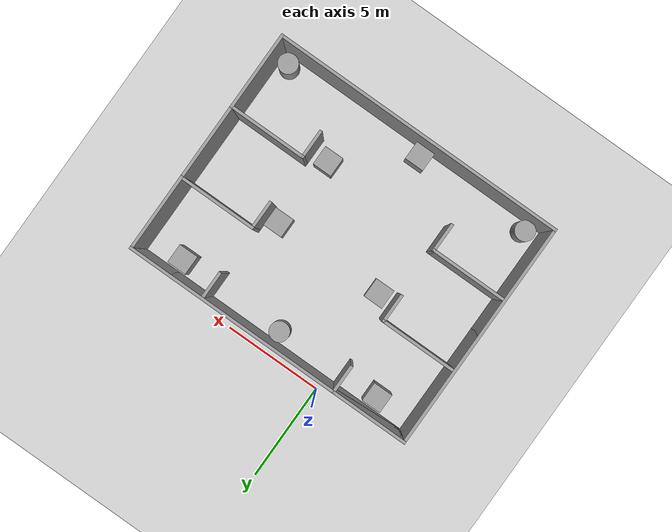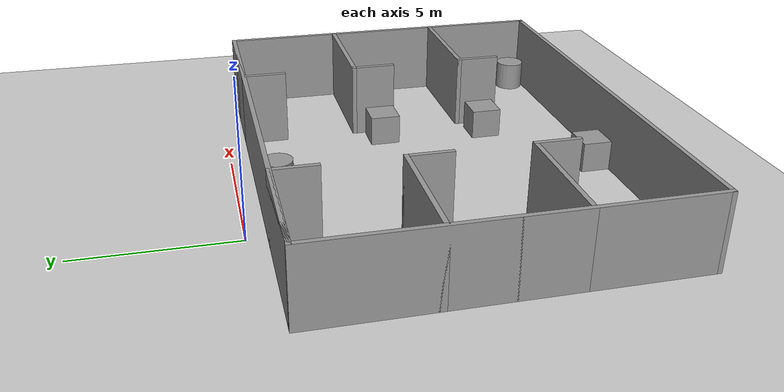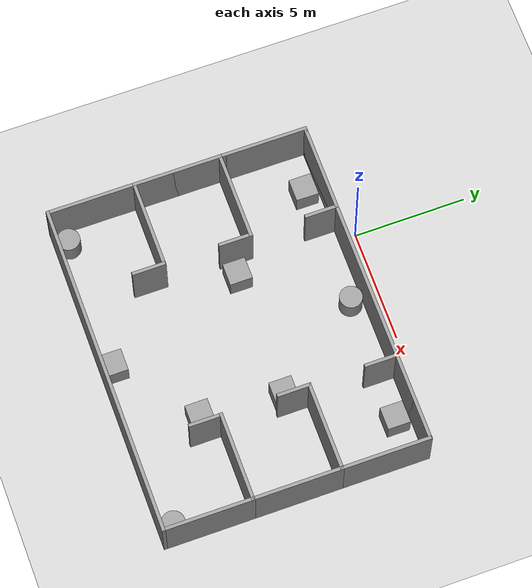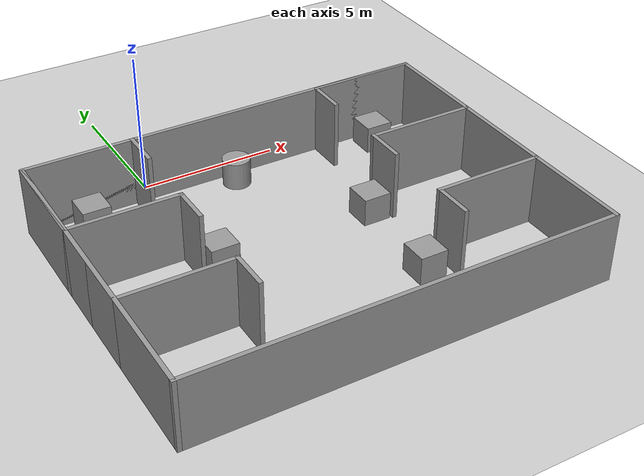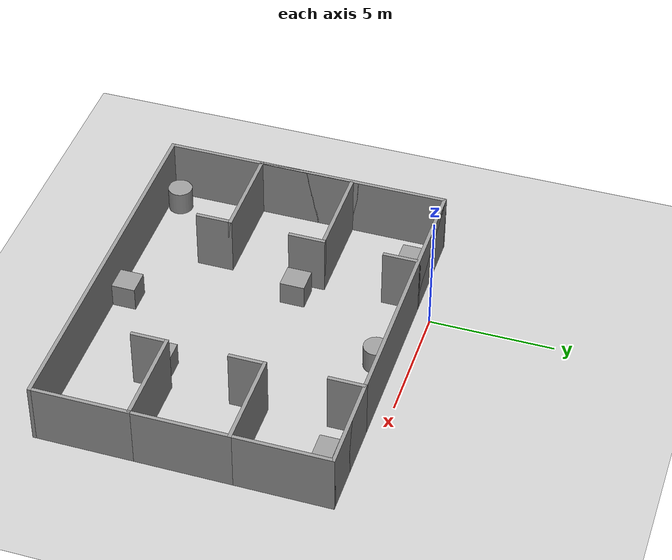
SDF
<sdf version="1.7">
 <world name="default">
  <light name="sun" type="directional">
   <pose>0 0 10 0 -0 0</pose>
   <diffuse>0.8 0.8 0.8 1</diffuse>
   <specular>0.2 0.2 0.2 1</specular>
   <attenuation>
    <range>1000</range>
    <constant>0.9</constant>
    <linear>0.01</linear>
    <quadratic>0.001</quadratic>
   </attenuation>
   <direction>-0.5 0.1 -0.9</direction>
   <spot><inner_angle>0</inner_angle><outer_angle>0</outer_angle><falloff>0</falloff></spot>
  </light>
  <model name="ground_plane">
   <static>1</static>
   <link name="link">
    <collision name="collision">
     <geometry><plane><normal>0 0 1</normal><size>100 100</size></plane></geometry>
     <surface><friction><ode><mu>100</mu><mu2>50</mu2></ode></friction></surface>
    </collision>
    <visual name="visual">
     <cast_shadows>0</cast_shadows>
     <geometry><plane><normal>0 0 1</normal><size>100 100</size></plane></geometry>
     <material>
      <script><uri>file://media/materials/scripts/gazebo.material</uri><name>Gazebo/Grey</name></script>
     </material>
    </visual>
   </link>
  </model>
  <gravity>0 0 -9.8</gravity>
  <magnetic_field>6e-06 2.3e-05 -4.2e-05</magnetic_field>
  <atmosphere type="adiabatic"/>
  <physics type="ode">
   <max_step_size>0.001</max_step_size>
   <real_time_factor>1</real_time_factor>
   <real_time_update_rate>1000</real_time_update_rate>
  </physics>
  <scene><ambient>0.4 0.4 0.4 1</ambient><background>0.7 0.7 0.7 1</background><shadows>1</shadows></scene>
  <spherical_coordinates>
   <surface_model>EARTH_WGS84</surface_model>
   <latitude_deg>0</latitude_deg>
   <longitude_deg>0</longitude_deg>
   <elevation>0</elevation>
   <heading_deg>0</heading_deg>
  </spherical_coordinates>
  <model name="room1">
   <pose>3.005 -6.1625 0 0 -0 0</pose>
   <link name="Wall_0">
    <collision name="Wall_0_Collision">
     <geometry><box><size>15 0.15 2.5</size></box></geometry>
     <pose>0 0 1.25 0 -0 0</pose>
    </collision>
    <visual name="Wall_0_Visual">
     <pose>0 0 1.25 0 -0 0</pose>
     <geometry><box><size>15 0.15 2.5</size></box></geometry>
     <material>
      <script><uri>file://media/materials/scripts/gazebo.material</uri><name>Gazebo/Grey</name></script>
      <ambient>1 1 1 1</ambient>
     </material>
     <meta><layer>0</layer></meta>
    </visual>
    <pose>0 5.4625 0 0 -0 0</pose>
   </link>
   <link name="Wall_1">
    <collision name="Wall_1_Collision">
     <geometry><box><size>4 0.15 2.5</size></box></geometry>
     <pose>0 0 1.25 0 -0 0</pose>
    </collision>
    <visual name="Wall_1_Visual">
     <pose>0 0 1.25 0 -0 0</pose>
     <geometry><box><size>4 0.15 2.5</size></box></geometry>
     <material>
      <script><uri>file://media/materials/scripts/gazebo.material</uri><name>Gazebo/Grey</name></script>
      <ambient>1 1 1 1</ambient>
     </material>
     <meta><layer>0</layer></meta>
    </visual>
    <pose>7.425 3.5375 0 0 -0 -1.5708</pose>
   </link>
   <link name="Wall_2">
    <collision name="Wall_2_Collision">
     <geometry><box><size>4 0.15 2.5</size></box></geometry>
     <pose>0 0 1.25 0 -0 0</pose>
    </collision>
    <visual name="Wall_2_Visual">
     <pose>0 0 1.25 0 -0 0</pose>
     <geometry><box><size>4 0.15 2.5</size></box></geometry>
     <material>
      <script><uri>file://media/materials/scripts/gazebo.material</uri><name>Gazebo/Grey</name></script>
      <ambient>1 1 1 1</ambient>
     </material>
     <meta><layer>0</layer></meta>
    </visual>
    <pose>5.5 1.6125 0 0 -0 3.14159</pose>
   </link>
   <link name="Wall_24">
    <collision name="Wall_24_Collision">
     <geometry><box><size>4 0.15 2.5</size></box></geometry>
     <pose>0 0 1.25 0 -0 0</pose>
    </collision>
    <visual name="Wall_24_Visual">
     <pose>0 0 1.25 0 -0 0</pose>
     <geometry><box><size>4 0.15 2.5</size></box></geometry>
     <material>
      <script><uri>file://media/materials/scripts/gazebo.material</uri><name>Gazebo/Grey</name></script>
      <ambient>1 1 1 1</ambient>
     </material>
     <meta><layer>0</layer></meta>
    </visual>
    <pose>7.425 -4.1625 0 0 -0 -1.5708</pose>
   </link>
   <link name="Wall_25">
    <collision name="Wall_25_Collision">
     <geometry><box><size>15 0.15 2.5</size></box></geometry>
     <pose>0 0 1.25 0 -0 0</pose>
    </collision>
    <visual name="Wall_25_Visual">
     <pose>0 0 1.25 0 -0 0</pose>
     <geometry><box><size>15 0.15 2.5</size></box></geometry>
     <material>
      <script><uri>file://media/materials/scripts/gazebo.material</uri><name>Gazebo/Grey</name></script>
      <ambient>1 1 1 1</ambient>
     </material>
     <meta><layer>0</layer></meta>
    </visual>
    <pose>0 -6.0875 0 0 -0 3.14159</pose>
   </link>
   <link name="Wall_26">
    <collision name="Wall_26_Collision">
     <geometry><box><size>11.7 0.15 2.5</size></box></geometry>
     <pose>0 0 1.25 0 -0 0</pose>
    </collision>
    <visual name="Wall_26_Visual">
     <pose>0 0 1.25 0 -0 0</pose>
     <geometry><box><size>11.7 0.15 2.5</size></box></geometry>
     <material>
      <script><uri>file://media/materials/scripts/gazebo.material</uri><name>Gazebo/Grey</name></script>
      <ambient>1 1 1 1</ambient>
     </material>
     <meta><layer>0</layer></meta>
    </visual>
    <pose>-7.425 -0.3125 0 0 -0 1.5708</pose>
   </link>
   <link name="Wall_28">
    <collision name="Wall_28_Collision">
     <geometry><box><size>4 0.15 2.5</size></box></geometry>
     <pose>0 0 1.25 0 -0 0</pose>
    </collision>
    <visual name="Wall_28_Visual">
     <pose>0 0 1.25 0 -0 0</pose>
     <geometry><box><size>4 0.15 2.5</size></box></geometry>
     <material>
      <script><uri>file://media/materials/scripts/gazebo.material</uri><name>Gazebo/Grey</name></script>
      <ambient>1 1 1 1</ambient>
     </material>
     <meta><layer>0</layer></meta>
    </visual>
    <pose>5.5 5.4625 0 0 -0 3.14159</pose>
   </link>
   <link name="Wall_29">
    <collision name="Wall_29_Collision">
     <geometry><box><size>1.5 0.15 2.5</size></box></geometry>
     <pose>0 0 1.25 0 -0 0</pose>
    </collision>
    <visual name="Wall_29_Visual">
     <pose>0 0 1.25 0 -0 0</pose>
     <geometry><box><size>1.5 0.15 2.5</size></box></geometry>
     <material>
      <script><uri>file://media/materials/scripts/gazebo.material</uri><name>Gazebo/Grey</name></script>
      <ambient>1 1 1 1</ambient>
     </material>
     <meta><layer>0</layer></meta>
    </visual>
    <pose>3.575 4.7875 0 0 -0 -1.5708</pose>
   </link>
   <link name="Wall_3">
    <collision name="Wall_3_Collision">
     <geometry><box><size>1.5 0.15 2.5</size></box></geometry>
     <pose>0 0 1.25 0 -0 0</pose>
    </collision>
    <visual name="Wall_3_Visual">
     <pose>0 0 1.25 0 -0 0</pose>
     <geometry><box><size>1.5 0.15 2.5</size></box></geometry>
     <material>
      <script><uri>file://media/materials/scripts/gazebo.material</uri><name>Gazebo/Grey</name></script>
      <ambient>1 1 1 1</ambient>
     </material>
     <meta><layer>0</layer></meta>
    </visual>
    <pose>3.575 0.9375 0 0 -0 -1.5708</pose>
   </link>
   <link name="Wall_31">
    <collision name="Wall_31_Collision">
     <geometry><box><size>4 0.15 2.5</size></box></geometry>
     <pose>0 0 1.25 0 -0 0</pose>
    </collision>
    <visual name="Wall_31_Visual">
     <pose>0 0 1.25 0 -0 0</pose>
     <geometry><box><size>4 0.15 2.5</size></box></geometry>
     <material>
      <script><uri>file://media/materials/scripts/gazebo.material</uri><name>Gazebo/Grey</name></script>
      <ambient>1 1 1 1</ambient>
     </material>
     <meta><layer>0</layer></meta>
    </visual>
    <pose>-5.5 5.4625 0 0 -0 0</pose>
   </link>
   <link name="Wall_32">
    <collision name="Wall_32_Collision">
     <geometry><box><size>1.5 0.15 2.5</size></box></geometry>
     <pose>0 0 1.25 0 -0 0</pose>
    </collision>
    <visual name="Wall_32_Visual">
     <pose>0 0 1.25 0 -0 0</pose>
     <geometry><box><size>1.5 0.15 2.5</size></box></geometry>
     <material>
      <script><uri>file://media/materials/scripts/gazebo.material</uri><name>Gazebo/Grey</name></script>
      <ambient>1 1 1 1</ambient>
     </material>
     <meta><layer>0</layer></meta>
    </visual>
    <pose>-3.575 4.7875 0 0 -0 -1.5708</pose>
   </link>
   <link name="Wall_34">
    <collision name="Wall_34_Collision">
     <geometry><box><size>4 0.15 2.5</size></box></geometry>
     <pose>0 0 1.25 0 -0 0</pose>
    </collision>
    <visual name="Wall_34_Visual">
     <pose>0 0 1.25 0 -0 0</pose>
     <geometry><box><size>4 0.15 2.5</size></box></geometry>
     <material>
      <script><uri>file://media/materials/scripts/gazebo.material</uri><name>Gazebo/Grey</name></script>
      <ambient>1 1 1 1</ambient>
     </material>
     <meta><layer>0</layer></meta>
    </visual>
    <pose>-7.425 3.5375 0 0 -0 -1.5708</pose>
   </link>
   <link name="Wall_35">
    <collision name="Wall_35_Collision">
     <geometry><box><size>4 0.15 2.5</size></box></geometry>
     <pose>0 0 1.25 0 -0 0</pose>
    </collision>
    <visual name="Wall_35_Visual">
     <pose>0 0 1.25 0 -0 0</pose>
     <geometry><box><size>4 0.15 2.5</size></box></geometry>
     <material>
      <script><uri>file://media/materials/scripts/gazebo.material</uri><name>Gazebo/Grey</name></script>
      <ambient>1 1 1 1</ambient>
     </material>
     <meta><layer>0</layer></meta>
    </visual>
    <pose>-5.5 1.6125 0 0 -0 0</pose>
   </link>
   <link name="Wall_36">
    <collision name="Wall_36_Collision">
     <geometry><box><size>1.5 0.15 2.5</size></box></geometry>
     <pose>0 0 1.25 0 -0 0</pose>
    </collision>
    <visual name="Wall_36_Visual">
     <pose>0 0 1.25 0 -0 0</pose>
     <geometry><box><size>1.5 0.15 2.5</size></box></geometry>
     <material>
      <script><uri>file://media/materials/scripts/gazebo.material</uri><name>Gazebo/Grey</name></script>
      <ambient>1 1 1 1</ambient>
     </material>
     <meta><layer>0</layer></meta>
    </visual>
    <pose>-3.575 0.9375 0 0 -0 -1.5708</pose>
   </link>
   <link name="Wall_38">
    <collision name="Wall_38_Collision">
     <geometry><box><size>4 0.15 2.5</size></box></geometry>
     <pose>0 0 1.25 0 -0 0</pose>
    </collision>
    <visual name="Wall_38_Visual">
     <pose>0 0 1.25 0 -0 0</pose>
     <geometry><box><size>4 0.15 2.5</size></box></geometry>
     <material>
      <script><uri>file://media/materials/scripts/gazebo.material</uri><name>Gazebo/Grey</name></script>
      <ambient>1 1 1 1</ambient>
     </material>
     <meta><layer>0</layer></meta>
    </visual>
    <pose>-7.425 -0.3125 0 0 -0 -1.5708</pose>
   </link>
   <link name="Wall_39">
    <collision name="Wall_39_Collision">
     <geometry><box><size>4 0.15 2.5</size></box></geometry>
     <pose>0 0 1.25 0 -0 0</pose>
    </collision>
    <visual name="Wall_39_Visual">
     <pose>0 0 1.25 0 -0 0</pose>
     <geometry><box><size>4 0.15 2.5</size></box></geometry>
     <material>
      <script><uri>file://media/materials/scripts/gazebo.material</uri><name>Gazebo/Grey</name></script>
      <ambient>1 1 1 1</ambient>
     </material>
     <meta><layer>0</layer></meta>
    </visual>
    <pose>-5.5 -2.2375 0 0 -0 0</pose>
   </link>
   <link name="Wall_40">
    <collision name="Wall_40_Collision">
     <geometry><box><size>1.5 0.15 2.5</size></box></geometry>
     <pose>0 0 1.25 0 -0 0</pose>
    </collision>
    <visual name="Wall_40_Visual">
     <pose>0 0 1.25 0 -0 0</pose>
     <geometry><box><size>1.5 0.15 2.5</size></box></geometry>
     <material>
      <script><uri>file://media/materials/scripts/gazebo.material</uri><name>Gazebo/Grey</name></script>
      <ambient>1 1 1 1</ambient>
     </material>
     <meta><layer>0</layer></meta>
    </visual>
    <pose>-3.575 -2.9125 0 0 -0 -1.5708</pose>
   </link>
   <link name="Wall_5">
    <collision name="Wall_5_Collision">
     <geometry><box><size>4 0.15 2.5</size></box></geometry>
     <pose>0 0 1.25 0 -0 0</pose>
    </collision>
    <visual name="Wall_5_Visual">
     <pose>0 0 1.25 0 -0 0</pose>
     <geometry><box><size>4 0.15 2.5</size></box></geometry>
     <material>
      <script><uri>file://media/materials/scripts/gazebo.material</uri><name>Gazebo/Grey</name></script>
      <ambient>1 1 1 1</ambient>
     </material>
     <meta><layer>0</layer></meta>
    </visual>
    <pose>7.425 -0.3125 0 0 -0 -1.5708</pose>
   </link>
   <link name="Wall_6">
    <collision name="Wall_6_Collision">
     <geometry><box><size>4 0.15 2.5</size></box></geometry>
     <pose>0 0 1.25 0 -0 0</pose>
    </collision>
    <visual name="Wall_6_Visual">
     <pose>0 0 1.25 0 -0 0</pose>
     <geometry><box><size>4 0.15 2.5</size></box></geometry>
     <material>
      <script><uri>file://media/materials/scripts/gazebo.material</uri><name>Gazebo/Grey</name></script>
      <ambient>1 1 1 1</ambient>
     </material>
     <meta><layer>0</layer></meta>
    </visual>
    <pose>5.5 -2.2375 0 0 -0 3.14159</pose>
   </link>
   <link name="Wall_7">
    <collision name="Wall_7_Collision">
     <geometry><box><size>1.5 0.15 2.5</size></box></geometry>
     <pose>0 0 1.25 0 -0 0</pose>
    </collision>
    <visual name="Wall_7_Visual">
     <pose>0 0 1.25 0 -0 0</pose>
     <geometry><box><size>1.5 0.15 2.5</size></box></geometry>
     <material>
      <script><uri>file://media/materials/scripts/gazebo.material</uri><name>Gazebo/Grey</name></script>
      <ambient>1 1 1 1</ambient>
     </material>
     <meta><layer>0</layer></meta>
    </visual>
    <pose>3.575 -2.9125 0 0 -0 -1.5708</pose>
   </link>
   <static>1</static>
  </model>
  <model name="room2">
   <link name="link_0">
    <inertial>
     <mass>1</mass>
     <inertia>
      <ixx>0.166667</ixx>
      <ixy>0</ixy>
      <ixz>0</ixz>
      <iyy>0.166667</iyy>
      <iyz>0</iyz>
      <izz>0.166667</izz>
     </inertia>
    </inertial>
    <pose>5.27529 5.12658 0 0 -0 0</pose>
    <visual name="visual">
     <geometry><box><size>1 1 1</size></box></geometry>
     <material>
      <lighting>1</lighting>
      <script><uri>file://media/materials/scripts/gazebo.material</uri><name>Gazebo/Grey</name></script>
      <shader type="pixel"/>
     </material>
    </visual>
    <collision name="collision">
     <geometry><box><size>1 1 1</size></box></geometry>
     <surface>
      <friction>
       <ode><mu>1</mu><mu2>1</mu2><fdir1>0 0 0</fdir1><slip1>0</slip1><slip2>0</slip2></ode>
       <torsional>
        <coefficient>1</coefficient>
        <patch_radius>0</patch_radius>
        <surface_radius>0</surface_radius>
        <use_patch_radius>1</use_patch_radius>
        <ode><slip>0</slip></ode>
       </torsional>
      </friction>
      <bounce><restitution_coefficient>0</restitution_coefficient><threshold>1e+06</threshold></bounce>
      <contact>
       <collide_without_contact>0</collide_without_contact>
       <collide_without_contact_bitmask>1</collide_without_contact_bitmask>
       <collide_bitmask>1</collide_bitmask>
       <ode>
        <soft_cfm>0</soft_cfm>
        <soft_erp>0.2</soft_erp>
        <kp>1e+13</kp>
        <kd>1</kd>
        <max_vel>0.01</max_vel>
        <min_depth>0</min_depth>
       </ode>
       <bullet>
        <split_impulse>1</split_impulse>
        <split_impulse_penetration_threshold>-0.01</split_impulse_penetration_threshold>
        <soft_cfm>0</soft_cfm>
        <soft_erp>0.2</soft_erp>
        <kp>1e+13</kp>
        <kd>1</kd>
       </bullet>
      </contact>
     </surface>
    </collision>
   </link>
   <link name="link_1">
    <inertial>
     <mass>1</mass>
     <inertia>
      <ixx>0.166667</ixx>
      <ixy>0</ixy>
      <ixz>0</ixz>
      <iyy>0.166667</iyy>
      <iyz>0</iyz>
      <izz>0.166667</izz>
     </inertia>
    </inertial>
    <pose>-5.76065 5.1276 0 0 -0 0</pose>
    <visual name="visual">
     <geometry><box><size>1 1 1</size></box></geometry>
     <material>
      <lighting>1</lighting>
      <script><uri>file://media/materials/scripts/gazebo.material</uri><name>Gazebo/Grey</name></script>
      <shader type="pixel"/>
     </material>
    </visual>
    <collision name="collision">
     <geometry><box><size>1 1 1</size></box></geometry>
     <surface>
      <friction>
       <ode><mu>1</mu><mu2>1</mu2><fdir1>0 0 0</fdir1><slip1>0</slip1><slip2>0</slip2></ode>
       <torsional>
        <coefficient>1</coefficient>
        <patch_radius>0</patch_radius>
        <surface_radius>0</surface_radius>
        <use_patch_radius>1</use_patch_radius>
        <ode><slip>0</slip></ode>
       </torsional>
      </friction>
      <bounce><restitution_coefficient>0</restitution_coefficient><threshold>1e+06</threshold></bounce>
      <contact>
       <collide_without_contact>0</collide_without_contact>
       <collide_without_contact_bitmask>1</collide_without_contact_bitmask>
       <collide_bitmask>1</collide_bitmask>
       <ode>
        <soft_cfm>0</soft_cfm>
        <soft_erp>0.2</soft_erp>
        <kp>1e+13</kp>
        <kd>1</kd>
        <max_vel>0.01</max_vel>
        <min_depth>0</min_depth>
       </ode>
       <bullet>
        <split_impulse>1</split_impulse>
        <split_impulse_penetration_threshold>-0.01</split_impulse_penetration_threshold>
        <soft_cfm>0</soft_cfm>
        <soft_erp>0.2</soft_erp>
        <kp>1e+13</kp>
        <kd>1</kd>
       </bullet>
      </contact>
     </surface>
    </collision>
   </link>
   <link name="link_10">
    <inertial>
     <mass>1</mass>
     <inertia>
      <ixx>0.166667</ixx>
      <ixy>0</ixy>
      <ixz>0</ixz>
      <iyy>0.166667</iyy>
      <iyz>0</iyz>
      <izz>0.166667</izz>
     </inertia>
    </inertial>
    <pose>2.65087 1.15737 0 0 -0 0</pose>
    <visual name="visual">
     <geometry><box><size>1 1 1</size></box></geometry>
     <material>
      <lighting>1</lighting>
      <script><uri>file://media/materials/scripts/gazebo.material</uri><name>Gazebo/Grey</name></script>
      <shader type="pixel"/>
     </material>
    </visual>
    <collision name="collision">
     <geometry><box><size>1 1 1</size></box></geometry>
     <surface>
      <friction>
       <ode><mu>1</mu><mu2>1</mu2><fdir1>0 0 0</fdir1><slip1>0</slip1><slip2>0</slip2></ode>
       <torsional>
        <coefficient>1</coefficient>
        <patch_radius>0</patch_radius>
        <surface_radius>0</surface_radius>
        <use_patch_radius>1</use_patch_radius>
        <ode><slip>0</slip></ode>
       </torsional>
      </friction>
      <bounce><restitution_coefficient>0</restitution_coefficient><threshold>1e+06</threshold></bounce>
      <contact>
       <collide_without_contact>0</collide_without_contact>
       <collide_without_contact_bitmask>1</collide_without_contact_bitmask>
       <collide_bitmask>1</collide_bitmask>
       <ode>
        <soft_cfm>0</soft_cfm>
        <soft_erp>0.2</soft_erp>
        <kp>1e+13</kp>
        <kd>1</kd>
        <max_vel>0.01</max_vel>
        <min_depth>0</min_depth>
       </ode>
       <bullet>
        <split_impulse>1</split_impulse>
        <split_impulse_penetration_threshold>-0.01</split_impulse_penetration_threshold>
        <soft_cfm>0</soft_cfm>
        <soft_erp>0.2</soft_erp>
        <kp>1e+13</kp>
        <kd>1</kd>
       </bullet>
      </contact>
     </surface>
    </collision>
   </link>
   <link name="link_2">
    <inertial>
     <mass>1</mass>
     <inertia>
      <ixx>0.166667</ixx>
      <ixy>0</ixy>
      <ixz>0</ixz>
      <iyy>0.166667</iyy>
      <iyz>0</iyz>
      <izz>0.166667</izz>
     </inertia>
    </inertial>
    <pose>-3.0477 1.14509 0 0 -0 0</pose>
    <visual name="visual">
     <geometry><box><size>1 1 1</size></box></geometry>
     <material>
      <lighting>1</lighting>
      <script><uri>file://media/materials/scripts/gazebo.material</uri><name>Gazebo/Grey</name></script>
      <shader type="pixel"/>
     </material>
    </visual>
    <collision name="collision">
     <geometry><box><size>1 1 1</size></box></geometry>
     <surface>
      <friction>
       <ode><mu>1</mu><mu2>1</mu2><fdir1>0 0 0</fdir1><slip1>0</slip1><slip2>0</slip2></ode>
       <torsional>
        <coefficient>1</coefficient>
        <patch_radius>0</patch_radius>
        <surface_radius>0</surface_radius>
        <use_patch_radius>1</use_patch_radius>
        <ode><slip>0</slip></ode>
       </torsional>
      </friction>
      <bounce><restitution_coefficient>0</restitution_coefficient><threshold>1e+06</threshold></bounce>
      <contact>
       <collide_without_contact>0</collide_without_contact>
       <collide_without_contact_bitmask>1</collide_without_contact_bitmask>
       <collide_bitmask>1</collide_bitmask>
       <ode>
        <soft_cfm>0</soft_cfm>
        <soft_erp>0.2</soft_erp>
        <kp>1e+13</kp>
        <kd>1</kd>
        <max_vel>0.01</max_vel>
        <min_depth>0</min_depth>
       </ode>
       <bullet>
        <split_impulse>1</split_impulse>
        <split_impulse_penetration_threshold>-0.01</split_impulse_penetration_threshold>
        <soft_cfm>0</soft_cfm>
        <soft_erp>0.2</soft_erp>
        <kp>1e+13</kp>
        <kd>1</kd>
       </bullet>
      </contact>
     </surface>
    </collision>
   </link>
   <link name="link_3">
    <inertial>
     <mass>1</mass>
     <inertia>
      <ixx>0.166667</ixx>
      <ixy>0</ixy>
      <ixz>0</ixz>
      <iyy>0.166667</iyy>
      <iyz>0</iyz>
      <izz>0.166667</izz>
     </inertia>
    </inertial>
    <pose>2.42176 -2.47036 0 0 -0 0</pose>
    <visual name="visual">
     <geometry><box><size>1 1 1</size></box></geometry>
     <material>
      <lighting>1</lighting>
      <script><uri>file://media/materials/scripts/gazebo.material</uri><name>Gazebo/Grey</name></script>
      <shader type="pixel"/>
     </material>
    </visual>
    <collision name="collision">
     <geometry><box><size>1 1 1</size></box></geometry>
     <surface>
      <friction>
       <ode><mu>1</mu><mu2>1</mu2><fdir1>0 0 0</fdir1><slip1>0</slip1><slip2>0</slip2></ode>
       <torsional>
        <coefficient>1</coefficient>
        <patch_radius>0</patch_radius>
        <surface_radius>0</surface_radius>
        <use_patch_radius>1</use_patch_radius>
        <ode><slip>0</slip></ode>
       </torsional>
      </friction>
      <bounce><restitution_coefficient>0</restitution_coefficient><threshold>1e+06</threshold></bounce>
      <contact>
       <collide_without_contact>0</collide_without_contact>
       <collide_without_contact_bitmask>1</collide_without_contact_bitmask>
       <collide_bitmask>1</collide_bitmask>
       <ode>
        <soft_cfm>0</soft_cfm>
        <soft_erp>0.2</soft_erp>
        <kp>1e+13</kp>
        <kd>1</kd>
        <max_vel>0.01</max_vel>
        <min_depth>0</min_depth>
       </ode>
       <bullet>
        <split_impulse>1</split_impulse>
        <split_impulse_penetration_threshold>-0.01</split_impulse_penetration_threshold>
        <soft_cfm>0</soft_cfm>
        <soft_erp>0.2</soft_erp>
        <kp>1e+13</kp>
        <kd>1</kd>
       </bullet>
      </contact>
     </surface>
    </collision>
   </link>
   <link name="link_4">
    <inertial>
     <mass>1</mass>
     <inertia>
      <ixx>0.166667</ixx>
      <ixy>0</ixy>
      <ixz>0</ixz>
      <iyy>0.166667</iyy>
      <iyz>0</iyz>
      <izz>0.166667</izz>
     </inertia>
    </inertial>
    <pose>-0.903856 -5.13974 0 0 -0 0</pose>
    <visual name="visual">
     <geometry><box><size>1 1 1</size></box></geometry>
     <material>
      <lighting>1</lighting>
      <script><uri>file://media/materials/scripts/gazebo.material</uri><name>Gazebo/Grey</name></script>
      <shader type="pixel"/>
     </material>
    </visual>
    <collision name="collision">
     <geometry><box><size>1 1 1</size></box></geometry>
     <surface>
      <friction>
       <ode><mu>1</mu><mu2>1</mu2><fdir1>0 0 0</fdir1><slip1>0</slip1><slip2>0</slip2></ode>
       <torsional>
        <coefficient>1</coefficient>
        <patch_radius>0</patch_radius>
        <surface_radius>0</surface_radius>
        <use_patch_radius>1</use_patch_radius>
        <ode><slip>0</slip></ode>
       </torsional>
      </friction>
      <bounce><restitution_coefficient>0</restitution_coefficient><threshold>1e+06</threshold></bounce>
      <contact>
       <collide_without_contact>0</collide_without_contact>
       <collide_without_contact_bitmask>1</collide_without_contact_bitmask>
       <collide_bitmask>1</collide_bitmask>
       <ode>
        <soft_cfm>0</soft_cfm>
        <soft_erp>0.2</soft_erp>
        <kp>1e+13</kp>
        <kd>1</kd>
        <max_vel>0.01</max_vel>
        <min_depth>0</min_depth>
       </ode>
       <bullet>
        <split_impulse>1</split_impulse>
        <split_impulse_penetration_threshold>-0.01</split_impulse_penetration_threshold>
        <soft_cfm>0</soft_cfm>
        <soft_erp>0.2</soft_erp>
        <kp>1e+13</kp>
        <kd>1</kd>
       </bullet>
      </contact>
     </surface>
    </collision>
   </link>
   <link name="link_5">
    <inertial>
     <mass>1</mass>
     <inertia><ixx>0.145833</ixx><ixy>0</ixy><ixz>0</ixz><iyy>0.145833</iyy><iyz>0</iyz><izz>0.125</izz></inertia>
    </inertial>
    <pose>-6.86713 -5.12266 0 0 -0 0</pose>
    <visual name="visual">
     <geometry><cylinder><radius>0.5</radius><length>1</length></cylinder></geometry>
     <material>
      <lighting>1</lighting>
      <script><uri>file://media/materials/scripts/gazebo.material</uri><name>Gazebo/Grey</name></script>
      <shader type="pixel"/>
     </material>
    </visual>
    <collision name="collision">
     <geometry><cylinder><radius>0.5</radius><length>1</length></cylinder></geometry>
     <surface>
      <friction>
       <ode><mu>1</mu><mu2>1</mu2><fdir1>0 0 0</fdir1><slip1>0</slip1><slip2>0</slip2></ode>
       <torsional>
        <coefficient>1</coefficient>
        <patch_radius>0</patch_radius>
        <surface_radius>0</surface_radius>
        <use_patch_radius>1</use_patch_radius>
        <ode><slip>0</slip></ode>
       </torsional>
      </friction>
      <bounce><restitution_coefficient>0</restitution_coefficient><threshold>1e+06</threshold></bounce>
      <contact>
       <collide_without_contact>0</collide_without_contact>
       <collide_without_contact_bitmask>1</collide_without_contact_bitmask>
       <collide_bitmask>1</collide_bitmask>
       <ode>
        <soft_cfm>0</soft_cfm>
        <soft_erp>0.2</soft_erp>
        <kp>1e+13</kp>
        <kd>1</kd>
        <max_vel>0.01</max_vel>
        <min_depth>0</min_depth>
       </ode>
       <bullet>
        <split_impulse>1</split_impulse>
        <split_impulse_penetration_threshold>-0.01</split_impulse_penetration_threshold>
        <soft_cfm>0</soft_cfm>
        <soft_erp>0.2</soft_erp>
        <kp>1e+13</kp>
        <kd>1</kd>
       </bullet>
      </contact>
     </surface>
    </collision>
   </link>
   <link name="link_8">
    <inertial>
     <mass>1</mass>
     <inertia><ixx>0.145833</ixx><ixy>0</ixy><ixz>0</ixz><iyy>0.145833</iyy><iyz>0</iyz><izz>0.125</izz></inertia>
    </inertial>
    <pose>6.53918 -5.07746 0 0 -0 0</pose>
    <visual name="visual">
     <geometry><cylinder><radius>0.5</radius><length>1</length></cylinder></geometry>
     <material>
      <lighting>1</lighting>
      <script><uri>file://media/materials/scripts/gazebo.material</uri><name>Gazebo/Grey</name></script>
      <shader type="pixel"/>
     </material>
    </visual>
    <collision name="collision">
     <geometry><cylinder><radius>0.5</radius><length>1</length></cylinder></geometry>
     <surface>
      <friction>
       <ode><mu>1</mu><mu2>1</mu2><fdir1>0 0 0</fdir1><slip1>0</slip1><slip2>0</slip2></ode>
       <torsional>
        <coefficient>1</coefficient>
        <patch_radius>0</patch_radius>
        <surface_radius>0</surface_radius>
        <use_patch_radius>1</use_patch_radius>
        <ode><slip>0</slip></ode>
       </torsional>
      </friction>
      <bounce><restitution_coefficient>0</restitution_coefficient><threshold>1e+06</threshold></bounce>
      <contact>
       <collide_without_contact>0</collide_without_contact>
       <collide_without_contact_bitmask>1</collide_without_contact_bitmask>
       <collide_bitmask>1</collide_bitmask>
       <ode>
        <soft_cfm>0</soft_cfm>
        <soft_erp>0.2</soft_erp>
        <kp>1e+13</kp>
        <kd>1</kd>
        <max_vel>0.01</max_vel>
        <min_depth>0</min_depth>
       </ode>
       <bullet>
        <split_impulse>1</split_impulse>
        <split_impulse_penetration_threshold>-0.01</split_impulse_penetration_threshold>
        <soft_cfm>0</soft_cfm>
        <soft_erp>0.2</soft_erp>
        <kp>1e+13</kp>
        <kd>1</kd>
       </bullet>
      </contact>
     </surface>
    </collision>
   </link>
   <link name="link_9">
    <inertial>
     <mass>1</mass>
     <inertia><ixx>0.145833</ixx><ixy>0</ixy><ixz>0</ixz><iyy>0.145833</iyy><iyz>0</iyz><izz>0.125</izz></inertia>
    </inertial>
    <pose>-0.307767 5.25357 0 0 -0 0</pose>
    <visual name="visual">
     <geometry><cylinder><radius>0.5</radius><length>1</length></cylinder></geometry>
     <material>
      <lighting>1</lighting>
      <script><uri>file://media/materials/scripts/gazebo.material</uri><name>Gazebo/Grey</name></script>
      <shader type="pixel"/>
     </material>
    </visual>
    <collision name="collision">
     <geometry><cylinder><radius>0.5</radius><length>1</length></cylinder></geometry>
     <surface>
      <friction>
       <ode><mu>1</mu><mu2>1</mu2><fdir1>0 0 0</fdir1><slip1>0</slip1><slip2>0</slip2></ode>
       <torsional>
        <coefficient>1</coefficient>
        <patch_radius>0</patch_radius>
        <surface_radius>0</surface_radius>
        <use_patch_radius>1</use_patch_radius>
        <ode><slip>0</slip></ode>
       </torsional>
      </friction>
      <bounce><restitution_coefficient>0</restitution_coefficient><threshold>1e+06</threshold></bounce>
      <contact>
       <collide_without_contact>0</collide_without_contact>
       <collide_without_contact_bitmask>1</collide_without_contact_bitmask>
       <collide_bitmask>1</collide_bitmask>
       <ode>
        <soft_cfm>0</soft_cfm>
        <soft_erp>0.2</soft_erp>
        <kp>1e+13</kp>
        <kd>1</kd>
        <max_vel>0.01</max_vel>
        <min_depth>0</min_depth>
       </ode>
       <bullet>
        <split_impulse>1</split_impulse>
        <split_impulse_penetration_threshold>-0.01</split_impulse_penetration_threshold>
        <soft_cfm>0</soft_cfm>
        <soft_erp>0.2</soft_erp>
        <kp>1e+13</kp>
        <kd>1</kd>
       </bullet>
      </contact>
     </surface>
    </collision>
   </link>
   <static>0</static>
   <pose>3.26801 -6.58005 0.5 0 -0 0</pose>
  </model>
 </world>
</sdf>
